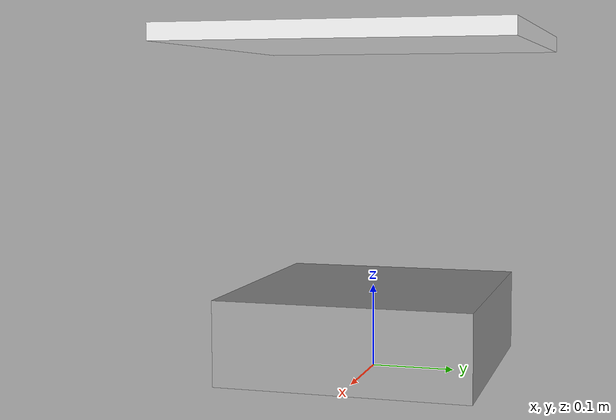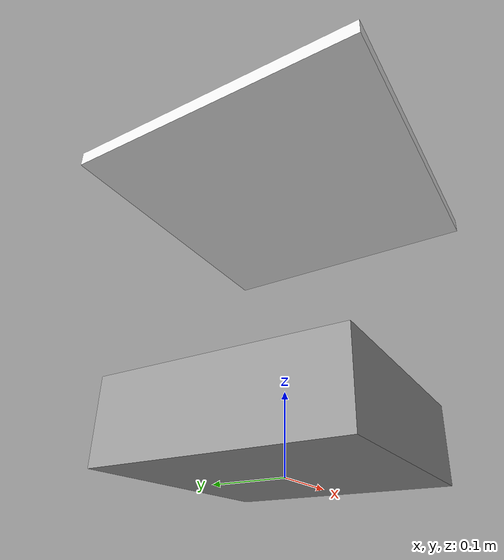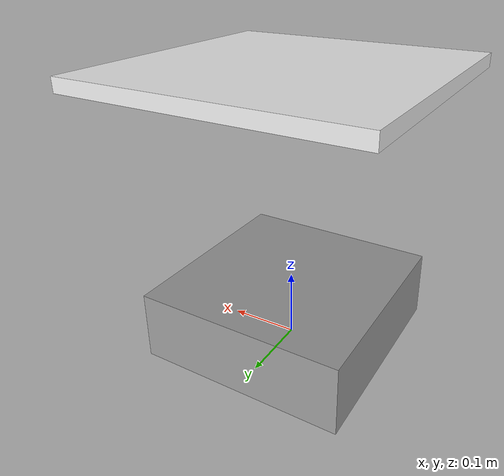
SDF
<?xml version="1.0" ?>
<sdf version="1.6">
  <model name="tilting_table">
    <static>false</static>

    <!-- Base link: fixed to the world, collisions disabled for ball interaction -->
    <link name="base">
      <pose>0 0 0.05 0 0 0</pose>
      <inertial>
        <mass>0.1</mass>
        <inertia>
          <ixx>0.1</ixx> <ixy>0</ixy> <ixz>0</ixz>
          <iyy>0.1</iyy> <iyz>0</iyz>
          <izz>0.1</izz>
        </inertia>
      </inertial>
      <collision name="base_collision">
        <geometry>
          <box>
            <size>0.3 0.3 0.1</size>
          </box>
        </geometry>
        <!-- Disable collisions for the base -->
        <surface>
          <contact>
            <collide_bitmask>0</collide_bitmask>
          </contact>
        </surface>
      </collision>
      <visual name="base_visual">
        <geometry>
          <box>
            <size>0.3 0.3 0.1</size>
          </box>
        </geometry>
        <material>
          <script>
            <uri>file://media/materials/scripts/gazebo.material</uri>
            <name>Gazebo/Grey</name>
          </script>
        </material>
      </visual>
    </link>

    <!-- Intermediate link: raised to give extra clearance -->
    <link name="tilt_intermediate">
      <!-- Raised to 0.4, adjust as needed -->
      <pose>0 0 0.4 0 0 0</pose>
      <inertial>
        <mass>0.01</mass>
        <inertia>
          <ixx>0.001</ixx> <ixy>0</ixy> <ixz>0</ixz>
          <iyy>0.001</iyy> <iyz>0</iyz>
          <izz>0.001</izz>
        </inertia>
      </inertial>
    </link>

    <!-- Plate link: raised to the same height as the intermediate link -->
    <link name="plate">
      <pose>0 0 0.4 0 0 0</pose>
      <inertial>
        <mass>0.1</mass>
        <inertia>
          <ixx>0.01</ixx> <ixy>0</ixy> <ixz>0</ixz>
          <iyy>0.01</iyy> <iyz>0</iyz>
          <izz>0.01</izz>
        </inertia>
      </inertial>
      <collision name="plate_collision">
        <geometry>
          <box>
            <size>0.4 0.4 0.02</size>
          </box>
        </geometry>
        <surface>
          <contact>
            <ode>
              <kp>1e+6</kp>
              <kd>100</kd>
            </ode>
          </contact>
          <friction>
            <ode>
              <mu>0.2</mu>
              <mu2>0.2</mu2>
            </ode>
          </friction>
        </surface>
      </collision>
      <visual name="plate_visual">
        <geometry>
          <box>
            <size>0.4 0.4 0.02</size>
          </box>
        </geometry>
        <material>
          <script>
            <uri>file://media/materials/scripts/gazebo.material</uri>
            <name>Gazebo/White</name>
          </script>
        </material>
      </visual>
    </link>

    <!-- Fixed joint connecting the base to the world -->
    <joint name="fixed_joint" type="fixed">
      <parent>world</parent>
      <child>base</child>
    </joint>

    <!-- Joint for tilt about the X-axis (base to intermediate link) -->
    <joint name="joint_x" type="revolute">
      <parent>base</parent>
      <child>tilt_intermediate</child>
      <!-- Joint positioned at the top of the base (z = 0.1) -->
      <pose>0 0 0.1 0 0 0</pose>
      <axis>
        <xyz>1 0 0</xyz>
        <limit>
          <lower>-0.5</lower>
          <upper>0.5</upper>
          <effort>20</effort>
          <velocity>5</velocity>
        </limit>
        <dynamics>
          <damping>0.01</damping>
        </dynamics>
      </axis>
      <physics>
        <ode>
          <provide_feedback>true</provide_feedback>
        </ode>
      </physics>
    </joint>

    <!-- Joint for tilt about the Y-axis (intermediate link to plate) -->
    <joint name="joint_y" type="revolute">
      <parent>tilt_intermediate</parent>
      <child>plate</child>
      <pose>0 0 0 0.05 0 0</pose>
      <axis>
        <xyz>0 1 0</xyz>
        <limit>
          <lower>-0.5</lower>
          <upper>0.5</upper>
          <effort>20</effort>
          <velocity>5</velocity>
        </limit>
        <dynamics>
          <damping>0.01</damping>
        </dynamics>
      </axis>
      <physics>
        <ode>
          <provide_feedback>true</provide_feedback>
        </ode>
      </physics>
    </joint>

  </model>
</sdf>
